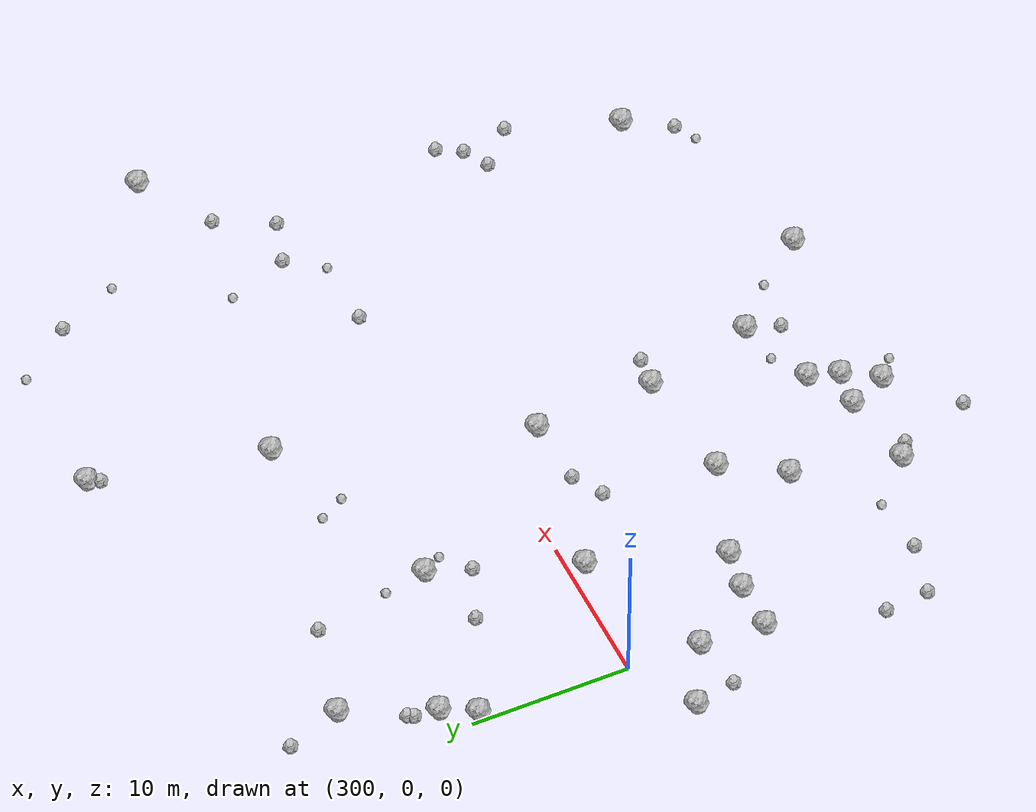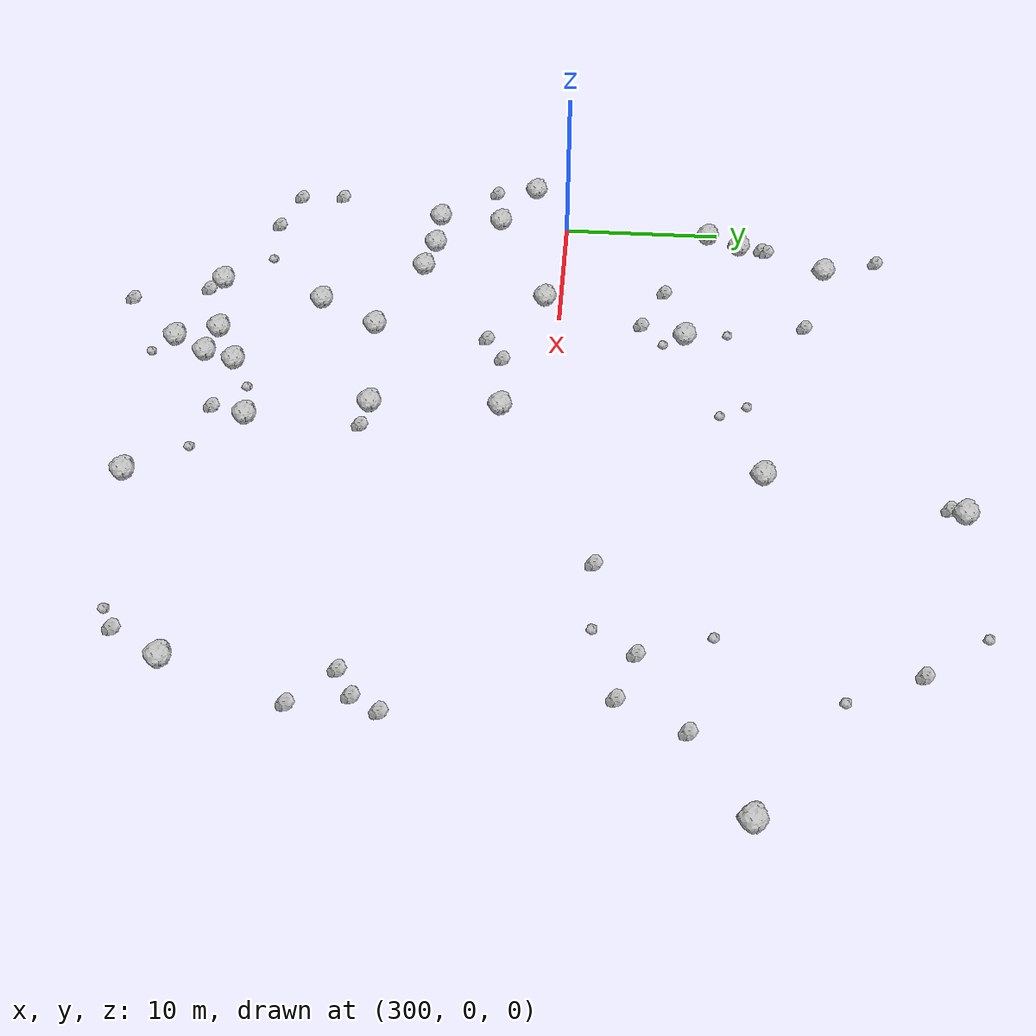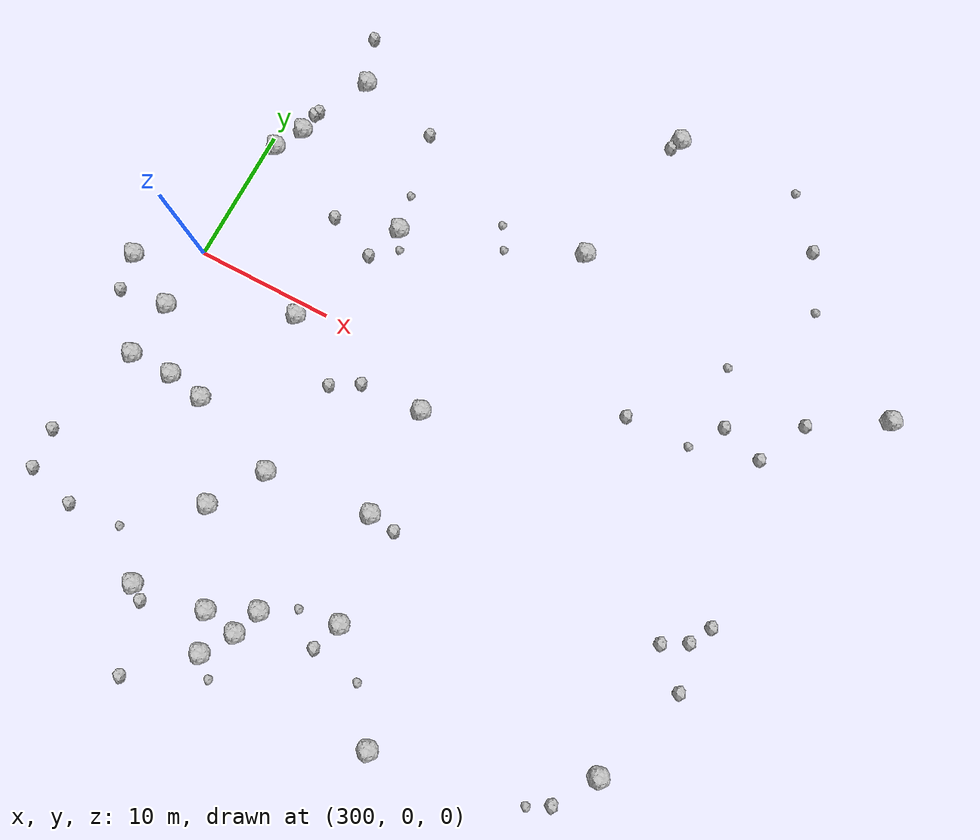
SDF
<sdf version="1.6">
 <world name="default">
  <include><uri>model://sun</uri></include>
  <model name="rock1_8_2">
   <include><uri>model://rock1</uri><pose>304.04898984258665 16.863668651146156 0.5 0 0 0</pose></include>
  </model>
  <model name="rock1_8_3">
   <include><uri>model://rock1</uri><pose>307.7878252313238 -21.816255617539756 0.5 0 0 0</pose></include>
  </model>
  <model name="rock1_8_4">
   <include><uri>model://rock1</uri><pose>300.59024465188133 9.390148373791511 0.5 0 0 0</pose></include>
  </model>
  <model name="rock1_8_5">
   <include><uri>model://rock1</uri><pose>299.5278037458684 -8.605379764033337 0.5 0 0 0</pose></include>
  </model>
  <model name="rock1_8_6">
   <include><uri>model://rock1</uri><pose>295.8325502869592 -2.3550162144470335 0.5 0 0 0</pose></include>
  </model>
  <model name="rock1_8_7">
   <include><uri>model://rock1</uri><pose>313.9339356091643 -23.600739584568387 0.5 0 0 0</pose></include>
  </model>
  <model name="rock1_8_8">
   <include><uri>model://rock1</uri><pose>311.5723166690976 7.875925583088581 0.5 0 0 0</pose></include>
  </model>
  <model name="rock1_8_9">
   <include><uri>model://rock1</uri><pose>326.3428618146614 -23.784843445961926 0.5 0 0 0</pose></include>
  </model>
  <model name="rock1_8_10">
   <include><uri>model://rock1</uri><pose>315.29225663253436 -21.470590265519203 0.5 0 0 0</pose></include>
  </model>
  <model name="rock1_8_11">
   <include><uri>model://rock1</uri><pose>308.1909712093331 -1.0065029013397329 0.5 0 0 0</pose></include>
  </model>
  <model name="rock1_8_12">
   <include><uri>model://rock1</uri><pose>311.81653949763086 -11.428670519441862 0.5 0 0 0</pose></include>
  </model>
  <model name="rock1_8_13">
   <include><uri>model://rock1</uri><pose>347.7620398894111 11.071251028946044 0.5 0 0 0</pose></include>
  </model>
  <model name="rock1_8_14">
   <include><uri>model://rock1</uri><pose>305.32147296223314 -9.093235292567453 0.5 0 0 0</pose></include>
  </model>
  <model name="rock1_8_15">
   <include><uri>model://rock1</uri><pose>299.79647005715515 -4.499326514000263 0.5 0 0 0</pose></include>
  </model>
  <model name="rock1_8_16">
   <include><uri>model://rock1</uri><pose>339.96412510853963 -18.51693845716399 0.5 0 0 0</pose></include>
  </model>
  <model name="rock1_8_17">
   <include><uri>model://rock1</uri><pose>309.455095038893 -15.150259676341612 0.5 0 0 0</pose></include>
  </model>
  <model name="rock1_8_18">
   <include><uri>model://rock1</uri><pose>324.11090644214244 12.325214103536695 0.5 0 0 0</pose></include>
  </model>
  <model name="rock1_8_19">
   <include><uri>model://rock1</uri><pose>315.97259489681676 -19.550782556623915 0.5 0 0 0</pose></include>
  </model>
  <model name="rock1_8_20">
   <include><uri>model://rock1</uri><pose>321.03072602303797 -17.874375353848144 0.5 0 0 0</pose></include>
  </model>
  <model name="rock1_8_21">
   <include><uri>model://rock1</uri><pose>312.88007054688995 -21.089146556948783 0.5 0 0 0</pose></include>
  </model>
  <model name="rock1_8_22">
   <include><uri>model://rock1</uri><pose>301.697130573051 11.42819922461483 0.5 0 0 0</pose></include>
  </model>
  <model name="rock1_8_23">
   <include><uri>model://rock1</uri><pose>326.47832833183384 23.29235282613496 0.5 0 0 0</pose></include>
  </model>
  <model name="rock1_8_24">
   <include><uri>model://rock1</uri><pose>302.65616990770405 -8.615333365194832 0.5 0 0 0</pose></include>
  </model>
  <model name="rock1_8_25">
   <include><uri>model://rock1</uri><pose>319.09261127762824 -2.98738949626717 0.5 0 0 0</pose></include>
  </model>
  <model name="rock1_8_26">
   <include><uri>model://rock1</uri><pose>319.3889315546399 -10.719329042874158 0.5 0 0 0</pose></include>
  </model>
  <model name="rock2_8_0">
   <include><uri>model://rock2</uri><pose>314.554856645431 -3.205677923471992 0.3 0 0 0</pose></include>
  </model>
  <model name="rock2_8_1">
   <include><uri>model://rock2</uri><pose>310.5457367749954 5.182556016618193 0.3 0 0 0</pose></include>
  </model>
  <model name="rock2_8_2">
   <include><uri>model://rock2</uri><pose>297.7032315327753 -18.42032607216226 0.3 0 0 0</pose></include>
  </model>
  <model name="rock2_8_3">
   <include><uri>model://rock2</uri><pose>297.448027735515 -15.582034186031734 0.3 0 0 0</pose></include>
  </model>
  <model name="rock2_8_4">
   <include><uri>model://rock2</uri><pose>321.2948123179889 -10.993147250987338 0.3 0 0 0</pose></include>
  </model>
  <model name="rock2_8_5">
   <include><uri>model://rock2</uri><pose>342.75227851936273 8.122789466266617 0.3 0 0 0</pose></include>
  </model>
  <model name="rock2_8_6">
   <include><uri>model://rock2</uri><pose>310.02343469442394 -27.17969867896618 0.3 0 0 0</pose></include>
  </model>
  <model name="rock2_8_7">
   <include><uri>model://rock2</uri><pose>310.06263464440514 15.348692780744969 0.3 0 0 0</pose></include>
  </model>
  <model name="rock2_8_8">
   <include><uri>model://rock2</uri><pose>301.18078631109057 -19.33465129231422 0.3 0 0 0</pose></include>
  </model>
  <model name="rock2_8_9">
   <include><uri>model://rock2</uri><pose>302.7472285459829 20.32270210260107 0.3 0 0 0</pose></include>
  </model>
  <model name="rock2_8_10">
   <include><uri>model://rock2</uri><pose>340.0240907811461 -9.393604474955993 0.3 0 0 0</pose></include>
  </model>
  <model name="rock2_8_11">
   <include><uri>model://rock2</uri><pose>308.7039143804743 -22.554695931066554 0.3 0 0 0</pose></include>
  </model>
  <model name="rock2_8_12">
   <include><uri>model://rock2</uri><pose>341.6730929548727 -8.476264842759601 0.3 0 0 0</pose></include>
  </model>
  <model name="rock2_8_13">
   <include><uri>model://rock2</uri><pose>338.33790412712915 19.903474362560125 0.3 0 0 0</pose></include>
  </model>
  <model name="rock2_8_14">
   <include><uri>model://rock2</uri><pose>326.06160503228983 22.517358201538386 0.3 0 0 0</pose></include>
  </model>
  <model name="rock2_8_15">
   <include><uri>model://rock2</uri><pose>337.9185375708467 5.490350805134746 0.3 0 0 0</pose></include>
  </model>
  <model name="rock2_8_16">
   <include><uri>model://rock2</uri><pose>340.9205378902413 4.556833842686586 0.3 0 0 0</pose></include>
  </model>
  <model name="rock2_8_17">
   <include><uri>model://rock2</uri><pose>307.0237499004194 6.59533554440651 0.3 0 0 0</pose></include>
  </model>
  <model name="rock2_8_18">
   <include><uri>model://rock2</uri><pose>342.5533992501801 -6.951791334978346 0.3 0 0 0</pose></include>
  </model>
  <model name="rock2_8_19">
   <include><uri>model://rock2</uri><pose>312.61673916618315 -4.315402492576787 0.3 0 0 0</pose></include>
  </model>
  <model name="rock2_8_20">
   <include><uri>model://rock2</uri><pose>331.66410841619916 3.1050770513518984 0.3 0 0 0</pose></include>
  </model>
  <model name="rock2_8_21">
   <include><uri>model://rock2</uri><pose>301.8033078394417 12.906079710800697 0.3 0 0 0</pose></include>
  </model>
  <model name="rock2_8_22">
   <include><uri>model://rock2</uri><pose>338.1065675226918 -21.380680630872092 0.3 0 0 0</pose></include>
  </model>
  <model name="rock2_8_23">
   <include><uri>model://rock2</uri><pose>302.0059772584293 13.25738386592883 0.3 0 0 0</pose></include>
  </model>
  <model name="rock2_8_24">
   <include><uri>model://rock2</uri><pose>296.28480739246896 -5.01554895643493 0.3 0 0 0</pose></include>
  </model>
  <model name="rock2_8_25">
   <include><uri>model://rock2</uri><pose>342.37441076491274 -11.608784975417002 0.3 0 0 0</pose></include>
  </model>
  <model name="rock2_8_26">
   <include><uri>model://rock2</uri><pose>320.26290260066025 -19.96952062612789 0.3 0 0 0</pose></include>
  </model>
  <model name="rock3_8_0">
   <include><uri>model://rock3</uri><pose>336.408276908867 9.418551085163841 0.2 0 0 0</pose></include>
  </model>
  <model name="rock3_8_1">
   <include><uri>model://rock3</uri><pose>312.24422867437465 6.54132769805198 0.2 0 0 0</pose></include>
  </model>
  <model name="rock3_8_2">
   <include><uri>model://rock3</uri><pose>318.8201117141524 9.943357367953595 0.2 0 0 0</pose></include>
  </model>
  <model name="rock3_8_3">
   <include><uri>model://rock3</uri><pose>340.23713685147277 15.842412720827127 0.2 0 0 0</pose></include>
  </model>
  <model name="rock3_8_4">
   <include><uri>model://rock3</uri><pose>323.75694905729057 -20.57277207541712 0.2 0 0 0</pose></include>
  </model>
  <model name="rock3_8_5">
   <include><uri>model://rock3</uri><pose>335.489638748723 23.4346294421182 0.2 0 0 0</pose></include>
  </model>
  <model name="rock3_8_6">
   <include><uri>model://rock3</uri><pose>336.2692916770304 3.167719810969075 0.2 0 0 0</pose></include>
  </model>
  <model name="rock3_8_7">
   <include><uri>model://rock3</uri><pose>336.6795077036808 -22.210093513354273 0.2 0 0 0</pose></include>
  </model>
  <model name="rock3_8_8">
   <include><uri>model://rock3</uri><pose>315.1693094945023 -24.81212453195721 0.2 0 0 0</pose></include>
  </model>
  <model name="rock3_8_9">
   <include><uri>model://rock3</uri><pose>311.02795647981947 10.53727576654267 0.2 0 0 0</pose></include>
  </model>
  <model name="rock3_8_10">
   <include><uri>model://rock3</uri><pose>304.9042436453697 -19.09893992932129 0.2 0 0 0</pose></include>
  </model>
  <model name="rock3_8_11">
   <include><uri>model://rock3</uri><pose>317.89065610913144 11.571370559177211 0.2 0 0 0</pose></include>
  </model>
  <model name="rock3_8_12">
   <include><uri>model://rock3</uri><pose>318.1532154634699 -18.297903838660933 0.2 0 0 0</pose></include>
  </model>
 </world>
</sdf>
